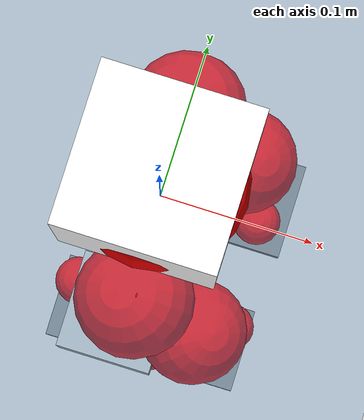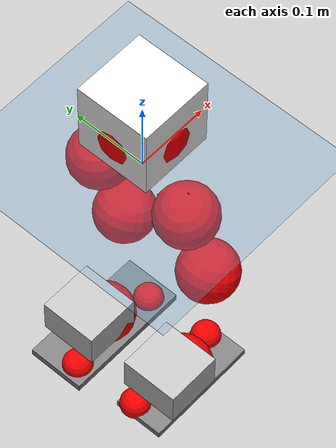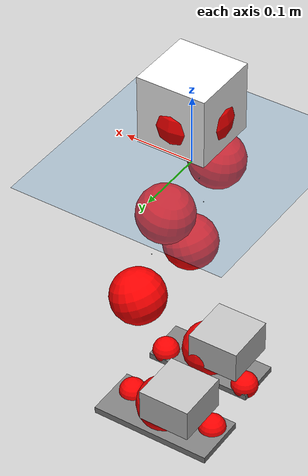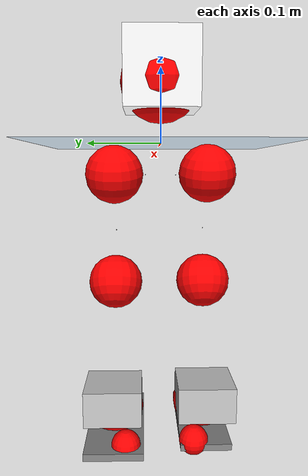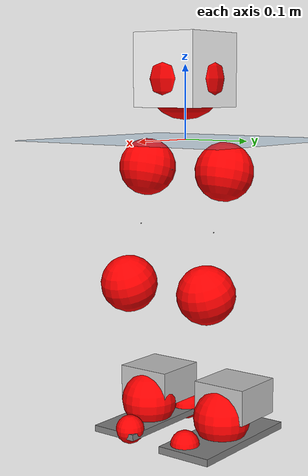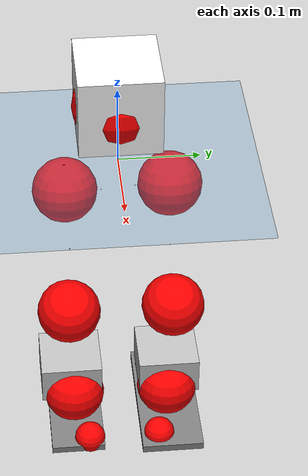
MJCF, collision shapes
<mujoco model="pi_12dof_release_v1">
  <compiler angle="radian" assetdir="assets" balanceinertia="true" inertiafromgeom="false"/>

  <option timestep="0.005" density="1.2" viscosity="2e-05"/>

  <size nkey="1"/>

  <visual>
    <quality shadowsize="8192"/>
    <map shadowclip="0.5"/>
  </visual>

  <default>
    <default class="/">
      <joint armature="0.01" damping="0.01" frictionloss="0.01"/>
      <geom contype="0" conaffinity="0" group="1" solref="-1000 -80"/>
      <site size="0.01 0.005 0.005" group="5"/>
      <general forcelimited="true" biastype="affine" gainprm="20" biasprm="0 -20 -0.5"/>
      <default class="foot">
        <geom size="0.0845 0.036 0.005" type="box" condim="6" group="4" priority="1" friction="0.9 0.2 0.2" solimp="0.015 1 0.005"/>
      </default>
      <default class="reward_collision_sphere">
        <geom group="5" rgba="1 0 0 1"/>
      </default>
    </default>
  </default>

  <asset>
    <texture type="skybox" colorspace="auto" name="//unnamed_texture_0" builtin="gradient" rgb1="0.95 0.95 0.95" rgb2="0.95 0.95 0.95" width="100" height="600"/>
    <texture type="2d" colorspace="auto" name="texplane" builtin="checker" rgb1="0.345 0.575 0.748" rgb2="0.345 0.575 0.748" markrgb="1 1 1" width="512" height="512"/>
    <material name="MatPlane" class="/" texture="texplane" texuniform="true" texrepeat="2 2" specular="0.9"/>
    <mesh name="baselink_1" class="/" file="baselink_1.STL"/>
    <mesh name="r_hip_pitch_link" class="/" file="r_hip_pitch_link.STL"/>
    <mesh name="r_hip_roll_link" class="/" file="r_hip_roll_link.STL"/>
    <mesh name="r_thigh_link" class="/" file="r_thigh_link.STL"/>
    <mesh name="r_calf_link" class="/" file="r_calf_link.STL"/>
    <mesh name="r_ankle_pitch_link" class="/" file="r_ankle_pitch_link.STL"/>
    <mesh name="r_ankle_roll_link" class="/" file="r_ankle_roll_link.STL"/>
    <mesh name="l_hip_pitch_link" class="/" file="l_hip_pitch_link.STL"/>
    <mesh name="l_hip_roll_link" class="/" file="l_hip_roll_link.STL"/>
    <mesh name="l_thigh_link" class="/" file="l_thigh_link.STL"/>
    <mesh name="l_calf_link" class="/" file="l_calf_link.STL"/>
    <mesh name="l_ankle_pitch_link" class="/" file="l_ankle_pitch_link.STL"/>
    <mesh name="l_ankle_roll_link" class="/" file="l_ankle_roll_link.STL"/>
  </asset>

  <worldbody>
    <geom name="floor" class="/" size="100 100 0.125" type="plane" group="0" material="MatPlane"/>
    <light name="toplight_shadow" class="/" pos="0 0 5" dir="0.0990148 0.0990148 -0.990148" type="directional" ambient="0.04 0.04 0.04" diffuse="0.55 0.55 0.55" specular="0.12 0.12 0.12"/>
    <light name="toplight_fill" class="/" pos="0 0 5" dir="0.0990148 0.0990148 -0.990148" type="directional" castshadow="false" ambient="0.04 0.04 0.04" diffuse="0.3 0.3 0.3" specular="0.08 0.08 0.08"/>
    <body name="trunk" pos="0.000206203 -8.06483e-05 -0.00279802" quat="1 -1.08137e-05 -1.13106e-05 -3.17441e-06">
      <inertial pos="0.00136145 0.00222823 0.0509067" quat="0.695542 0.009965 0.00958993 0.718352" mass="2.03761" diaginertia="0.00865249 0.00295449 0.00989828"/>
      <joint name="//unnamed_joint_0" type="free"/>
      <geom name="//unnamed_geom_1" class="/" type="mesh" density="0" rgba="1 1 1 1" mesh="baselink_1"/>
      <geom name="//unnamed_geom_2" class="/" size="0.0495773 0.0495773 0.0495773" pos="0 0 0.0955647" type="box" rgba="1 1 1 1"/>
      <geom name="//unnamed_geom_3" class="reward_collision_sphere" size="0.054535" pos="0 0 0.0836191"/>
      <site name="imu" class="/" pos="0.0039892 -0.0114359 0.00531796" size="0.00991545"/>
      <camera name="track" class="/" pos="0 -1.61162 0" quat="0.707107 0.707107 0 0" mode="trackcom"/>
      <camera name="ego_camera" class="/" pos="0.07307 0 0.215021" quat="-0.5 -0.5 0.5 0.5"/>
      <body name="r_hip_pitch_link" pos="0.00209429 -0.0206422 -0.0393878" quat="0.992201 -4.9786e-05 -0.12465 0.000168066">
        <inertial pos="-0.00175357 -0.0439479 -0.00201372" quat="-0.015392 0.705054 -0.0249898 0.708546" mass="0.359815" diaginertia="9.49383e-05 3.22983e-05 0.000207431"/>
        <joint name="r_hip_pitch_joint" class="/" pos="0 0 0" axis="-0.00859597 -0.99996 -0.00246143" stiffness="0.0119122" range="-1.7279 1.19427" armature="0.00871718" damping="0.00257482" frictionloss="0.00851382"/>
        <geom name="//unnamed_geom_4" class="/" type="mesh" density="0" rgba="0.75294 0.75294 0.75294 1" mesh="r_hip_pitch_link"/>
        <geom name="//unnamed_geom_5" class="/" size="0.000495773 0.000495773 0.000495773" type="box" rgba="0.75294 0.75294 0.75294 1"/>
        <body name="r_hip_roll_link" pos="0.000297382 -0.0439802 0.00202665" quat="1 2.06873e-05 5.61175e-05 -2.22001e-05">
          <inertial pos="-0.00141642 0.000658313 -0.0755317" quat="0.706162 -0.0783861 -0.0816759 0.698942" mass="0.365658" diaginertia="0.000292148 9.46807e-05 0.000294997"/>
          <joint name="r_hip_roll_joint" class="/" pos="0 0 0" axis="-0.999915 0.00581651 -0.0116953" range="-0.123514 0.516445" armature="0.010389" damping="0.017163" frictionloss="0.0110945"/>
          <geom name="//unnamed_geom_6" class="/" type="mesh" density="0" rgba="0.75294 0.75294 0.75294 1" mesh="r_hip_roll_link"/>
          <geom name="//unnamed_geom_7" class="/" size="0.000495773 0.000495773 0.000495773" type="box" rgba="0.75294 0.75294 0.75294 1"/>
          <geom name="//unnamed_geom_8" class="reward_collision_sphere" size="0.0396618"/>
          <body name="r_thigh_link" pos="-0.000987758 0.00331225 -0.0800658" quat="0.999999 0.000710964 0.000599653 0.000814991">
            <inertial pos="-0.000238189 0.00070419 -0.0569345" quat="0.736741 0.676175 0.000359713 -0.000618414" mass="0.1047" diaginertia="0.000109555 3.17286e-05 0.000134689"/>
            <joint name="r_thigh_joint" class="/" pos="0 0 0" axis="0.00218492 -0.00183349 -0.999996" range="-0.307372 0.540997" armature="0.0112835" damping="0.005475" frictionloss="0.0101587"/>
            <geom name="//unnamed_geom_9" class="/" type="mesh" density="0" rgba="0.75294 0.75294 0.75294 1" mesh="r_thigh_link"/>
            <geom name="//unnamed_geom_10" class="/" size="0.000495773 0.000495773 0.000495773" type="box" rgba="0.75294 0.75294 0.75294 1"/>
            <body name="r_calf_link" pos="0.00183106 -0.00385343 -0.085547" quat="0.94733 -0.000525347 0.320257 0.000843072">
              <inertial pos="-9.03925e-05 -0.00133073 -0.0826158" quat="0.99999 -0.00099061 5.78378e-05 0.00430565" mass="0.771496" diaginertia="0.00301941 0.00112239 0.000423967"/>
              <joint name="r_calf_joint" class="/" pos="0 0 0" axis="-0.00685672 -0.999931 0.00957326" stiffness="0.0117115" range="-1.68173 0.642282" armature="0.00963662" damping="0.00896933" frictionloss="0.00982476"/>
              <geom name="//unnamed_geom_11" class="/" type="mesh" density="0" rgba="0.75294 0.75294 0.75294 1" mesh="r_calf_link"/>
              <geom name="//unnamed_geom_12" class="/" size="0.000495773 0.000495773 0.000495773" type="box" rgba="0.75294 0.75294 0.75294 1"/>
              <geom name="//unnamed_geom_13" class="reward_collision_sphere" size="0.0396618"/>
              <body name="r_ankle_pitch_link" pos="0.00220923 0.00291583 -0.16683" quat="0.980035 -6.67612e-05 -0.198824 -1.59794e-05">
                <inertial pos="0.00512044 0.00394782 -0.000123259" quat="0.000644274 0.707139 -0.00234314 0.70707" mass="0.170888" diaginertia="0.000267693 7.55137e-05 0.000295117"/>
                <joint name="r_ankle_pitch_joint" class="/" pos="0 0 0" axis="0.000358931 -0.999975 0.00712515" range="-1.35037 0.534042" armature="0.0100216" damping="0.0222265" frictionloss="0.0112678"/>
                <geom name="//unnamed_geom_14" class="/" type="mesh" density="0" rgba="0.75294 0.75294 0.75294 1" mesh="r_ankle_pitch_link"/>
                <geom name="//unnamed_geom_15" class="/" size="0.0386703 0.0396618 0.0247886" type="box" rgba="0.75294 0.75294 0.75294 1"/>
                <body name="r_ankle_roll_link" pos="0.0759513 0.00301364 0.00235176" quat="1 -0.000129789 0.000168627 0.000373251">
                  <inertial pos="-0.0245173 0.000492928 -0.0152925" quat="0.559116 0.43098 0.434981 0.55896" mass="0.497686" diaginertia="0.00102704 0.000350632 0.000689138"/>
                  <joint name="r_ankle_roll_joint" class="/" pos="0 0 0" axis="-0.999998 0.00120596 0.00142296" range="-0.171064 0.169201" armature="0.00986653" damping="0.0083031" frictionloss="0.0108089"/>
                  <geom name="//unnamed_geom_16" class="/" type="mesh" density="0" rgba="0.75294 0.75294 0.75294 1" mesh="r_ankle_roll_link"/>
                  <geom name="//unnamed_geom_17" class="/" type="mesh" rgba="0.75294 0.75294 0.75294 1" mesh="r_ankle_roll_link"/>
                  <geom name="right_foot" class="foot" size="0.0805708 0.0344514 0.00443239" pos="-0.0496876 0 -0.0525606"/>
                  <geom name="//unnamed_geom_19" class="reward_collision_sphere" size="0.0396618" pos="-0.0487133 0 -0.0238912"/>
                  <geom name="//unnamed_geom_20" class="reward_collision_sphere" size="0.0198309" pos="0.014614 0.0161162 -0.0477823"/>
                  <geom name="//unnamed_geom_21" class="reward_collision_sphere" size="0.0198309" pos="-0.116912 0.0161162 -0.0477823"/>
                  <site name="right_foot" class="foot" pos="-0.0496876 0 -0.0525606" size="0.00991545"/>
                </body>
              </body>
            </body>
          </body>
        </body>
      </body>
      <body name="l_hip_pitch_link" pos="-0.00140617 0.0210967 -0.0390144" quat="0.992234 -0.000159947 -0.124385 -0.000175848">
        <inertial pos="-0.00105352 0.0407091 -0.000887724" quat="-0.0405099 0.710009 0.0277728 0.702478" mass="0.372761" diaginertia="0.000113721 3.69172e-05 0.000240002"/>
        <joint name="l_hip_pitch_joint" class="/" pos="0 0 0" axis="0.00480024 0.999987 -0.00145867" range="-1.19255 1.70204" armature="0.0112317" damping="0.022454" frictionloss="0.00854952"/>
        <geom name="//unnamed_geom_22" class="/" type="mesh" density="0" rgba="0.75294 0.75294 0.75294 1" mesh="l_hip_pitch_link"/>
        <geom name="//unnamed_geom_23" class="/" size="0.000495773 0.000495773 0.000495773" type="box" rgba="0.75294 0.75294 0.75294 1"/>
        <body name="l_hip_roll_link" pos="-0.000426604 0.0427149 0.000367118" quat="1 -0.000600404 -0.000287653 0.000600507">
          <inertial pos="-0.000848052 -0.0028716 -0.0734642" quat="0.698974 -0.0788156 -0.0732244 0.707009" mass="0.376281" diaginertia="0.000304318 9.42832e-05 0.000329678"/>
          <joint name="l_hip_roll_joint" class="/" pos="0 0 0" axis="-0.999983 -0.00515353 -0.00274234" range="-0.467216 0.0723196" armature="0.00986189" damping="0.00925687" frictionloss="0.00942105"/>
          <geom name="//unnamed_geom_24" class="/" type="mesh" density="0" rgba="0.75294 0.75294 0.75294 1" mesh="l_hip_roll_link"/>
          <geom name="//unnamed_geom_25" class="/" size="0.000495773 0.000495773 0.000495773" type="box" rgba="0.75294 0.75294 0.75294 1"/>
          <geom name="//unnamed_geom_26" class="reward_collision_sphere" size="0.0396618"/>
          <body name="l_thigh_link" pos="0.00250201 -0.000814948 -0.0823418" quat="0.999999 0.000260826 -0.000407735 -0.00136144">
            <inertial pos="0.00302361 -0.00236287 -0.0594415" quat="0.675776 0.737107 -0.000238792 -0.000265819" mass="0.108094" diaginertia="0.000110905 3.37183e-05 0.000145747"/>
            <joint name="l_thigh_joint" class="/" pos="0 0 0" axis="0.000351994 -0.00171429 -0.999998" stiffness="0.000673177" range="-0.601858 0.245971" armature="0.00920146" damping="0.0207917" frictionloss="0.00852526"/>
            <geom name="//unnamed_geom_27" class="/" type="mesh" density="0" rgba="0.75294 0.75294 0.75294 1" mesh="l_thigh_link"/>
            <geom name="//unnamed_geom_28" class="/" size="0.000495773 0.000495773 0.000495773" type="box" rgba="0.75294 0.75294 0.75294 1"/>
            <body name="l_calf_link" pos="0.000136137 0.00322474 -0.0833889" quat="0.947268 -0.000306143 0.320441 0.000684809">
              <inertial pos="-0.000551206 0.00433194 -0.085667" quat="0.999948 -0.00386425 0.00102853 0.00936972" mass="0.766257" diaginertia="0.00308364 0.00112045 0.000411427"/>
              <joint name="l_calf_joint" class="/" pos="0 0 0" axis="-0.00503504 0.999977 0.00457184" stiffness="0.00750161" range="-0.657322 1.61423" armature="0.00973629" damping="0.00682161" frictionloss="0.00860536"/>
              <geom name="//unnamed_geom_29" class="/" type="mesh" density="0" rgba="0.75294 0.75294 0.75294 1" mesh="l_calf_link"/>
              <geom name="//unnamed_geom_30" class="/" size="0.000495773 0.000495773 0.000495773" type="box" rgba="0.75294 0.75294 0.75294 1"/>
              <geom name="//unnamed_geom_31" class="reward_collision_sphere" size="0.0396618"/>
              <body name="l_ankle_pitch_link" pos="0.00015747 0.0010066 -0.168667" quat="0.980122 7.96989e-05 -0.198395 0.000427959">
                <inertial pos="0.00467706 0.000796823 0.00223121" quat="0.00162928 0.705654 -0.0112099 0.708466" mass="0.16837" diaginertia="0.000266535 7.36084e-05 0.000289169"/>
                <joint name="l_ankle_pitch_joint" class="/" pos="0 0 0" axis="-0.0121817 0.999926 -0.000488072" stiffness="0.000979494" range="-0.513479 1.31369" armature="0.0101015" damping="0.000192693" frictionloss="0.0101045"/>
                <geom name="//unnamed_geom_32" class="/" type="mesh" density="0" rgba="0.75294 0.75294 0.75294 1" mesh="l_ankle_pitch_link"/>
                <geom name="//unnamed_geom_33" class="/" size="0.0386703 0.0396618 0.0247886" type="box" rgba="0.75294 0.75294 0.75294 1"/>
                <body name="l_ankle_roll_link" pos="0.075118 -0.00188511 0.00042998" quat="0.999999 -0.000518678 0.00110641 0.000717703">
                  <inertial pos="-0.0225617 -5.82671e-05 -0.0171971" quat="0.5601 0.437247 0.425981 0.560039" mass="0.47735" diaginertia="0.000958764 0.000339806 0.000684335"/>
                  <joint name="l_ankle_roll_joint" class="/" pos="0 0 0" axis="-0.999969 -0.00595849 -0.00507262" range="-0.152719 0.12363" armature="0.0096458" damping="0.00415396" frictionloss="0.00909402"/>
                  <geom name="//unnamed_geom_34" class="/" type="mesh" density="0" rgba="0.75294 0.75294 0.75294 1" mesh="l_ankle_roll_link"/>
                  <geom name="//unnamed_geom_35" class="/" type="mesh" rgba="0.75294 0.75294 0.75294 1" mesh="l_ankle_roll_link"/>
                  <geom name="left_foot" class="foot" size="0.0905842 0.0398691 0.00493679" pos="-0.0496876 0 -0.0525606"/>
                  <geom name="//unnamed_geom_37" class="reward_collision_sphere" size="0.0396618" pos="-0.0487133 0 -0.0238912"/>
                  <geom name="//unnamed_geom_38" class="reward_collision_sphere" size="0.0198309" pos="0.014614 -0.0161162 -0.0477823"/>
                  <geom name="//unnamed_geom_39" class="reward_collision_sphere" size="0.0198309" pos="-0.116912 -0.0161162 -0.0477823"/>
                  <site name="left_foot" class="foot" pos="-0.0496876 0 -0.0525606" size="0.00991545"/>
                </body>
              </body>
            </body>
          </body>
        </body>
      </body>
    </body>
  </worldbody>

  <contact>
    <pair class="/" geom1="floor" geom2="right_foot" name="//unnamed_contact_1"/>
    <pair class="/" geom1="floor" geom2="left_foot" name="//unnamed_contact_0"/>
  </contact>

  <actuator>
    <general name="r_hip_pitch_joint" class="/" joint="r_hip_pitch_joint" forcerange="-18.6882 18.6882" gainprm="19.2427" biasprm="0 -19.2427 -0.498493"/>
    <general name="r_hip_roll_joint" class="/" joint="r_hip_roll_joint" forcerange="-20.6091 20.6091" gainprm="19.2427" biasprm="0 -19.2427 -0.498493"/>
    <general name="r_thigh_joint" class="/" joint="r_thigh_joint" forcerange="-18.886 18.886" gainprm="19.2427" biasprm="0 -19.2427 -0.498493"/>
    <general name="r_calf_joint" class="/" joint="r_calf_joint" forcerange="-21.3357 21.3357" gainprm="19.2427" biasprm="0 -19.2427 -0.498493"/>
    <general name="r_ankle_pitch_joint" class="/" joint="r_ankle_pitch_joint" forcerange="-22.8742 22.8742" gainprm="19.2427" biasprm="0 -19.2427 -0.498493"/>
    <general name="r_ankle_roll_joint" class="/" joint="r_ankle_roll_joint" forcerange="-22.7809 22.7809" gainprm="19.2427" biasprm="0 -19.2427 -0.498493"/>
    <general name="l_hip_pitch_joint" class="/" joint="l_hip_pitch_joint" forcerange="-19.0482 19.0482" gainprm="19.2427" biasprm="0 -19.2427 -0.498493"/>
    <general name="l_hip_roll_joint" class="/" joint="l_hip_roll_joint" forcerange="-19.4853 19.4853" gainprm="19.2427" biasprm="0 -19.2427 -0.498493"/>
    <general name="l_thigh_joint" class="/" joint="l_thigh_joint" forcerange="-20.7259 20.7259" gainprm="19.2427" biasprm="0 -19.2427 -0.498493"/>
    <general name="l_calf_joint" class="/" joint="l_calf_joint" forcerange="-20.5638 20.5638" gainprm="19.2427" biasprm="0 -19.2427 -0.498493"/>
    <general name="l_ankle_pitch_joint" class="/" joint="l_ankle_pitch_joint" forcerange="-21.3832 21.3832" gainprm="19.2427" biasprm="0 -19.2427 -0.498493"/>
    <general name="l_ankle_roll_joint" class="/" joint="l_ankle_roll_joint" forcerange="-19.3979 19.3979" gainprm="19.2427" biasprm="0 -19.2427 -0.498493"/>
  </actuator>

  <sensor>
    <gyro site="imu" name="imu_angular_velocity"/>
    <velocimeter site="imu" name="imu_linear_velocity"/>
    <framelinvel objtype="site" objname="left_foot" name="left_foot_global_linear_velocity"/>
    <framelinvel objtype="site" objname="right_foot" name="right_foot_global_linear_velocity"/>
  </sensor>

  <keyframe>
    <key name="home" qpos="0 0 0.291 1 0 0 0 0.4 0 0 -0.8 0.4 0 -0.4 0 0 0.8 -0.4 0"/>
  </keyframe>
</mujoco>
